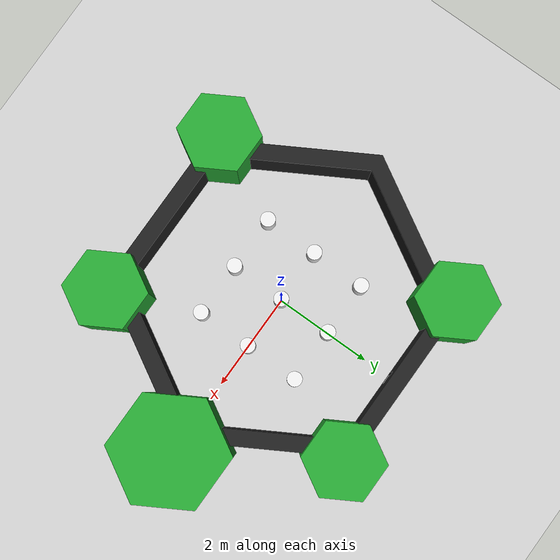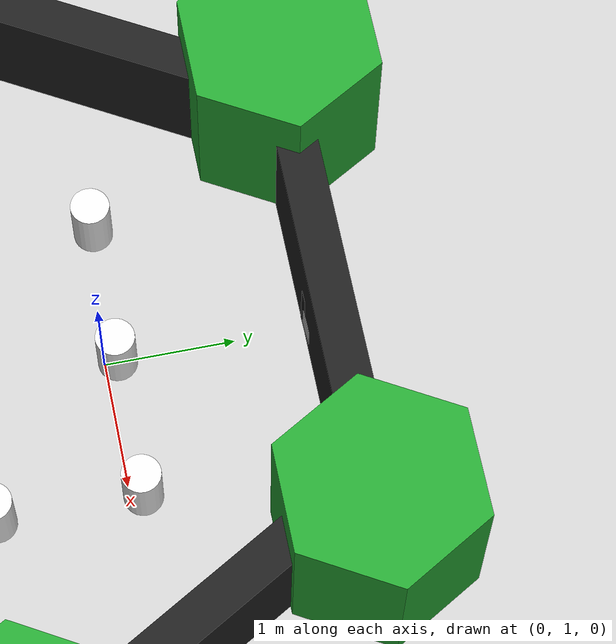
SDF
<sdf version="1.7">
 <world name="default">
  <model name="ground_plane">
   <static>1</static>
   <link name="link">
    <collision name="collision">
     <geometry><plane><normal>0 0 1</normal><size>100 100</size></plane></geometry>
     <surface>
      <contact><collide_bitmask>65535</collide_bitmask></contact>
      <friction><ode><mu>100</mu><mu2>50</mu2></ode></friction>
     </surface>
    </collision>
    <visual name="visual">
     <cast_shadows>0</cast_shadows>
     <geometry><plane><normal>0 0 1</normal><size>100 100</size></plane></geometry>
     <material>
      <script><uri>file://media/materials/scripts/gazebo.material</uri><name>Gazebo/Grey</name></script>
     </material>
    </visual>
   </link>
  </model>
  <light name="sun" type="directional">
   <pose>0 0 10 0 -0 0</pose>
   <diffuse>0.8 0.8 0.8 1</diffuse>
   <specular>0.2 0.2 0.2 1</specular>
   <attenuation>
    <range>1000</range>
    <constant>0.9</constant>
    <linear>0.01</linear>
    <quadratic>0.001</quadratic>
   </attenuation>
   <direction>-0.5 0.1 -0.9</direction>
   <spot><inner_angle>0</inner_angle><outer_angle>0</outer_angle><falloff>0</falloff></spot>
  </light>
  <scene><shadows>0</shadows><ambient>0.4 0.4 0.4 1</ambient><background>0.7 0.7 0.7 1</background></scene>
  <physics type="ode">
   <real_time_update_rate>1000</real_time_update_rate>
   <max_step_size>0.001</max_step_size>
   <real_time_factor>1</real_time_factor>
   <ode>
    <solver>
     <type>quick</type>
     <iters>150</iters>
     <precon_iters>0</precon_iters>
     <sor>1.4</sor>
     <use_dynamic_moi_rescaling>1</use_dynamic_moi_rescaling>
    </solver>
    <constraints>
     <cfm>1e-05</cfm>
     <erp>0.2</erp>
     <contact_max_correcting_vel>2000</contact_max_correcting_vel>
     <contact_surface_layer>0.01</contact_surface_layer>
    </constraints>
   </ode>
  </physics>
  <model name="turtlebot3_world">
   <static>1</static>
   <frame name="ros_symbol::__model__" attached_to="ros_symbol::symbol">
    <pose relative_to="__model__">0 0 0 0 -0 0</pose>
   </frame>
   <static>1</static>
   <link name="ros_symbol::symbol">
    <collision name="one_one">
     <pose>-1.1 -1.1 0.25 0 -0 0</pose>
     <geometry><cylinder><radius>0.15</radius><length>0.5</length></cylinder></geometry>
    </collision>
    <visual name="one_one">
     <pose>-1.1 -1.1 0.25 0 -0 0</pose>
     <geometry><cylinder><radius>0.15</radius><length>0.5</length></cylinder></geometry>
     <material>
      <script><uri>file://media/materials/scripts/gazebo.material</uri><name>Gazebo/White</name></script>
     </material>
    </visual>
    <collision name="one_two">
     <pose>-1.1 0 0.25 0 -0 0</pose>
     <geometry><cylinder><radius>0.15</radius><length>0.5</length></cylinder></geometry>
    </collision>
    <visual name="one_two">
     <pose>-1.1 0 0.25 0 -0 0</pose>
     <geometry><cylinder><radius>0.15</radius><length>0.5</length></cylinder></geometry>
     <material>
      <script><uri>file://media/materials/scripts/gazebo.material</uri><name>Gazebo/White</name></script>
     </material>
    </visual>
    <collision name="one_three">
     <pose>-1.1 1.1 0.25 0 -0 0</pose>
     <geometry><cylinder><radius>0.15</radius><length>0.5</length></cylinder></geometry>
    </collision>
    <visual name="one_three">
     <pose>-1.1 1.1 0.25 0 -0 0</pose>
     <geometry><cylinder><radius>0.15</radius><length>0.5</length></cylinder></geometry>
     <material>
      <script><uri>file://media/materials/scripts/gazebo.material</uri><name>Gazebo/White</name></script>
     </material>
    </visual>
    <collision name="two_one">
     <pose>0 -1.1 0.25 0 -0 0</pose>
     <geometry><cylinder><radius>0.15</radius><length>0.5</length></cylinder></geometry>
    </collision>
    <visual name="two_one">
     <pose>0 -1.1 0.25 0 -0 0</pose>
     <geometry><cylinder><radius>0.15</radius><length>0.5</length></cylinder></geometry>
     <material>
      <script><uri>file://media/materials/scripts/gazebo.material</uri><name>Gazebo/White</name></script>
     </material>
    </visual>
    <collision name="two_two">
     <pose>0 0 0.25 0 -0 0</pose>
     <geometry><cylinder><radius>0.15</radius><length>0.5</length></cylinder></geometry>
    </collision>
    <visual name="two_two">
     <pose>0 0 0.25 0 -0 0</pose>
     <geometry><cylinder><radius>0.15</radius><length>0.5</length></cylinder></geometry>
     <material>
      <script><uri>file://media/materials/scripts/gazebo.material</uri><name>Gazebo/White</name></script>
     </material>
    </visual>
    <collision name="two_three">
     <pose>0 1.1 0.25 0 -0 0</pose>
     <geometry><cylinder><radius>0.15</radius><length>0.5</length></cylinder></geometry>
    </collision>
    <visual name="two_three">
     <pose>0 1.1 0.25 0 -0 0</pose>
     <geometry><cylinder><radius>0.15</radius><length>0.5</length></cylinder></geometry>
     <material>
      <script><uri>file://media/materials/scripts/gazebo.material</uri><name>Gazebo/White</name></script>
     </material>
    </visual>
    <collision name="three_one">
     <pose>1.1 -1.1 0.25 0 -0 0</pose>
     <geometry><cylinder><radius>0.15</radius><length>0.5</length></cylinder></geometry>
    </collision>
    <visual name="three_one">
     <pose>1.1 -1.1 0.25 0 -0 0</pose>
     <geometry><cylinder><radius>0.15</radius><length>0.5</length></cylinder></geometry>
     <material>
      <script><uri>file://media/materials/scripts/gazebo.material</uri><name>Gazebo/White</name></script>
     </material>
    </visual>
    <collision name="three_two">
     <pose>1.1 0 0.25 0 -0 0</pose>
     <geometry><cylinder><radius>0.15</radius><length>0.5</length></cylinder></geometry>
    </collision>
    <visual name="three_two">
     <pose>1.1 0 0.25 0 -0 0</pose>
     <geometry><cylinder><radius>0.15</radius><length>0.5</length></cylinder></geometry>
     <material>
      <script><uri>file://media/materials/scripts/gazebo.material</uri><name>Gazebo/White</name></script>
     </material>
    </visual>
    <collision name="three_three">
     <pose>1.1 1.1 0.25 0 -0 0</pose>
     <geometry><cylinder><radius>0.15</radius><length>0.5</length></cylinder></geometry>
    </collision>
    <visual name="three_three">
     <pose>1.1 1.1 0.25 0 -0 0</pose>
     <geometry><cylinder><radius>0.15</radius><length>0.5</length></cylinder></geometry>
     <material>
      <script><uri>file://media/materials/scripts/gazebo.material</uri><name>Gazebo/White</name></script>
     </material>
    </visual>
    <collision name="head">
     <pose>3.5 0 -0.5 0 -0 0</pose>
     <geometry>
      <mesh><uri>model://turtlebot3_world/meshes/hexagon.dae</uri><scale>0.8 0.8 0.8</scale></mesh>
     </geometry>
    </collision>
    <visual name="head">
     <pose>3.5 0 -0.5 0 -0 0</pose>
     <geometry>
      <mesh><uri>model://turtlebot3_world/meshes/hexagon.dae</uri><scale>0.8 0.8 0.8</scale></mesh>
     </geometry>
     <material>
      <script><uri>file://media/materials/scripts/gazebo.material</uri><name>Gazebo/Green</name></script>
     </material>
    </visual>
    <collision name="left_hand">
     <pose>1.8 2.7 0 0 -0 0</pose>
     <geometry>
      <mesh><uri>model://turtlebot3_world/meshes/hexagon.dae</uri><scale>0.55 0.55 0.55</scale></mesh>
     </geometry>
    </collision>
    <visual name="left_hand">
     <pose>1.8 2.7 0 0 -0 0</pose>
     <geometry>
      <mesh><uri>model://turtlebot3_world/meshes/hexagon.dae</uri><scale>0.55 0.55 0.55</scale></mesh>
     </geometry>
     <material>
      <script><uri>file://media/materials/scripts/gazebo.material</uri><name>Gazebo/Green</name></script>
     </material>
    </visual>
    <collision name="right_hand">
     <pose>1.8 -2.7 0 0 -0 0</pose>
     <geometry>
      <mesh><uri>model://turtlebot3_world/meshes/hexagon.dae</uri><scale>0.55 0.55 0.55</scale></mesh>
     </geometry>
    </collision>
    <visual name="right_hand">
     <pose>1.8 -2.7 0 0 -0 0</pose>
     <geometry>
      <mesh><uri>model://turtlebot3_world/meshes/hexagon.dae</uri><scale>0.55 0.55 0.55</scale></mesh>
     </geometry>
     <material>
      <script><uri>file://media/materials/scripts/gazebo.material</uri><name>Gazebo/Green</name></script>
     </material>
    </visual>
    <collision name="left_foot">
     <pose>-1.8 2.7 0 0 -0 0</pose>
     <geometry>
      <mesh><uri>model://turtlebot3_world/meshes/hexagon.dae</uri><scale>0.55 0.55 0.55</scale></mesh>
     </geometry>
    </collision>
    <visual name="left_foot">
     <pose>-1.8 2.7 0 0 -0 0</pose>
     <geometry>
      <mesh><uri>model://turtlebot3_world/meshes/hexagon.dae</uri><scale>0.55 0.55 0.55</scale></mesh>
     </geometry>
     <material>
      <script><uri>file://media/materials/scripts/gazebo.material</uri><name>Gazebo/Green</name></script>
     </material>
    </visual>
    <collision name="right_foot">
     <pose>-1.8 -2.7 0 0 -0 0</pose>
     <geometry>
      <mesh><uri>model://turtlebot3_world/meshes/hexagon.dae</uri><scale>0.55 0.55 0.55</scale></mesh>
     </geometry>
    </collision>
    <visual name="right_foot">
     <pose>-1.8 -2.7 0 0 -0 0</pose>
     <geometry>
      <mesh><uri>model://turtlebot3_world/meshes/hexagon.dae</uri><scale>0.55 0.55 0.55</scale></mesh>
     </geometry>
     <material>
      <script><uri>file://media/materials/scripts/gazebo.material</uri><name>Gazebo/Green</name></script>
     </material>
    </visual>
    <collision name="body">
     <pose>0 0 -0.3 0 0 -1.5708</pose>
     <geometry>
      <mesh><uri>model://turtlebot3_world/meshes/wall.dae</uri><scale>0.25 0.25 0.25</scale></mesh>
     </geometry>
    </collision>
    <visual name="body">
     <pose>0 0 -0.3 0 0 -1.5708</pose>
     <geometry>
      <mesh><uri>model://turtlebot3_world/meshes/wall.dae</uri><scale>0.25 0.25 0.25</scale></mesh>
     </geometry>
     <material>
      <script><uri>file://media/materials/scripts/gazebo.material</uri><name>Gazebo/FlatBlack</name></script>
     </material>
    </visual>
    <pose relative_to="ros_symbol::__model__">0 0 0 0 -0 0</pose>
   </link>
  </model>
  <gravity>0 0 -9.8</gravity>
  <magnetic_field>6e-06 2.3e-05 -4.2e-05</magnetic_field>
  <atmosphere type="adiabatic"/>
  <audio><device>default</device></audio>
  <spherical_coordinates>
   <surface_model>EARTH_WGS84</surface_model>
   <latitude_deg>0</latitude_deg>
   <longitude_deg>0</longitude_deg>
   <elevation>0</elevation>
   <heading_deg>0</heading_deg>
  </spherical_coordinates>
  <model name="Charging Dock">
   <static>1</static>
   <link name="docking_station_link">
    <pose>0 0 0.25 0 -0 0</pose>
    <inertial>
     <mass>1</mass>
     <inertia><ixx>0.083</ixx><ixy>0</ixy><ixz>0</ixz><iyy>0.083</iyy><iyz>0</iyz><izz>0.083</izz></inertia>
    </inertial>
    <collision name="docking_station_collision">
     <geometry><box><size>0.35 0.35 0.5</size></box></geometry>
    </collision>
    <visual name="docking_station_visual">
     <geometry><box><size>0.35 0.35 0.5</size></box></geometry>
     <material>
      <ambient>0.1 0.1 0.1 1</ambient>
      <diffuse>0.1 0.1 0.1 1</diffuse>
      <specular>0 0 0 0</specular>
      <emissive>0 0 0 1</emissive>
     </material>
    </visual>
   </link>
   <link name="artag_link">
    <pose>0.18 0 0.1 0 -0 0</pose>
    <visual name="visual">
     <geometry>
      <mesh><uri>model://charging_dock/meshes/Marker0.dae</uri><scale>0.4 0.4 0.4</scale></mesh>
     </geometry>
    </visual>
   </link>
   <pose>0.072376 2.71699 0 0 0 -1.54111</pose>
  </model>
 </world>
</sdf>
